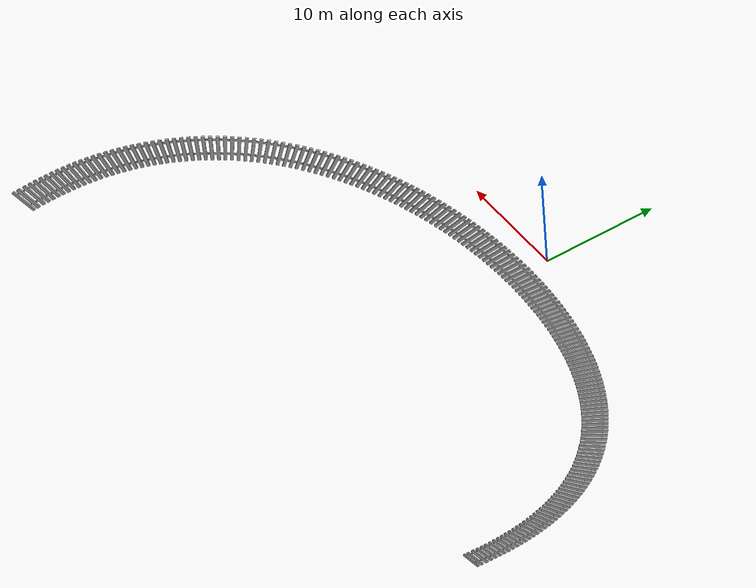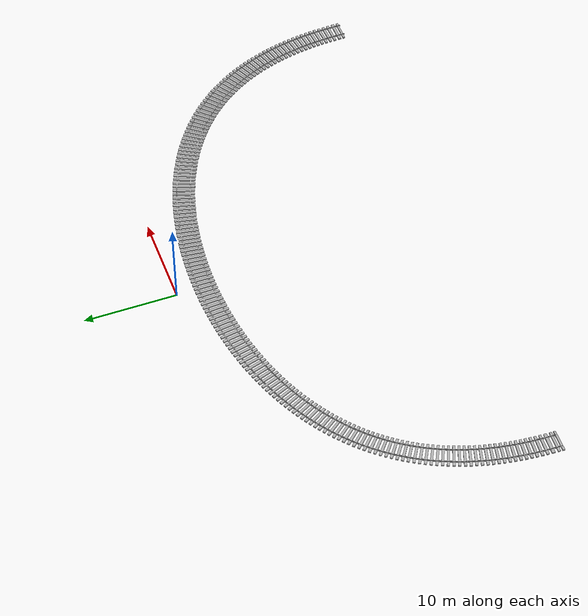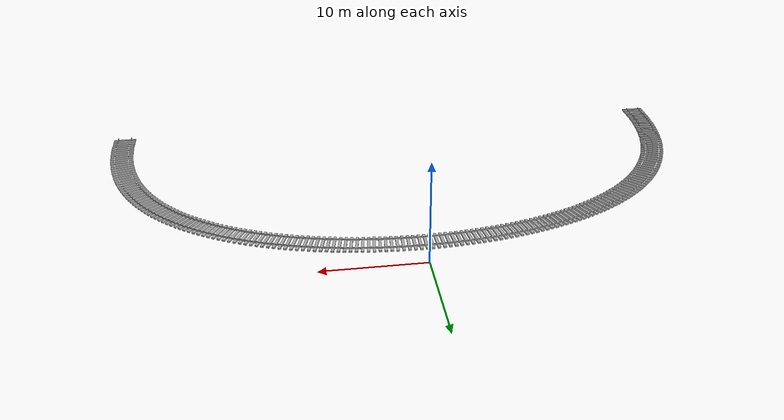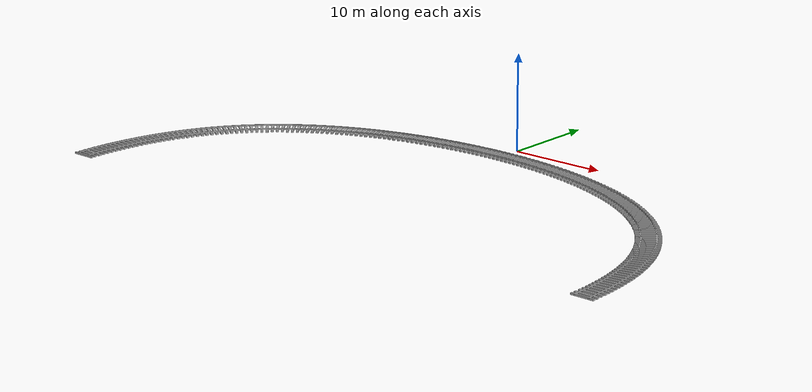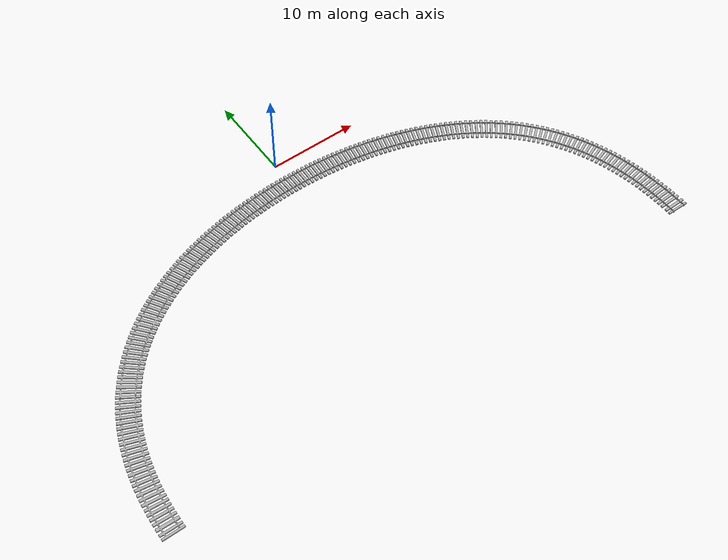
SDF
<?xml version="1.0" ?>
<sdf version="1.5">
  <model name="RailBow">
        <static>true</static>
    <link name="link">
    <gravity>0</gravity>
      <collision name="collision">
        <geometry>
          <mesh>
            <scale>1 1 1</scale>
            <uri>model://rail_bow/meshes/rail_bow_left.dae</uri>
          </mesh>
        </geometry>
      </collision>
      <visual name="visual">
        <geometry>
          <mesh>
            <scale>1 1 1</scale>
            <uri>model://rail_bow/meshes/rail_bow_left.dae</uri>
          </mesh>
        </geometry>
      </visual>
    </link>
  </model>
</sdf>
